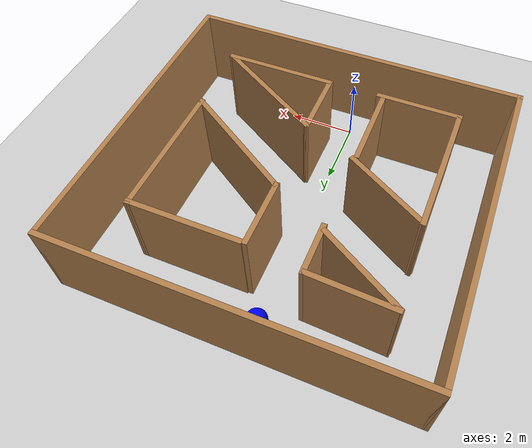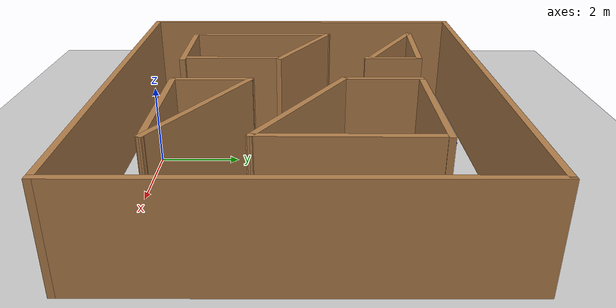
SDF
<sdf version="1.6">
 <world name="default">
  <light name="sun" type="directional">
   <pose>0 0 10 0 -0 0</pose>
   <diffuse>0.8 0.8 0.8 1</diffuse>
   <specular>0.2 0.2 0.2 1</specular>
   <attenuation>
    <range>1000</range>
    <constant>0.9</constant>
    <linear>0.01</linear>
    <quadratic>0.001</quadratic>
   </attenuation>
   <direction>-0.5 0.1 -0.9</direction>
  </light>
  <model name="ground_plane">
   <static>1</static>
   <link name="link">
    <collision name="collision">
     <geometry><plane><normal>0 0 1</normal><size>100 100</size></plane></geometry>
     <surface>
      <contact><collide_bitmask>65535</collide_bitmask></contact>
      <friction><ode><mu>100</mu><mu2>50</mu2></ode></friction>
     </surface>
    </collision>
    <visual name="visual">
     <cast_shadows>0</cast_shadows>
     <geometry><plane><normal>0 0 1</normal><size>100 100</size></plane></geometry>
     <material>
      <script><uri>file://media/materials/scripts/gazebo.material</uri><name>Gazebo/Grey</name></script>
     </material>
    </visual>
   </link>
  </model>
  <gravity>0 0 -9.8</gravity>
  <magnetic_field>6e-06 2.3e-05 -4.2e-05</magnetic_field>
  <atmosphere type="adiabatic"/>
  <physics name="default_physics" default="0" type="ode">
   <max_step_size>0.001</max_step_size>
   <real_time_factor>1</real_time_factor>
   <real_time_update_rate>1000</real_time_update_rate>
  </physics>
  <scene><ambient>0.4 0.4 0.4 1</ambient><background>0.7 0.7 0.7 1</background><shadows>1</shadows></scene>
  <audio><device>default</device></audio>
  <spherical_coordinates>
   <surface_model>EARTH_WGS84</surface_model>
   <latitude_deg>0</latitude_deg>
   <longitude_deg>0</longitude_deg>
   <elevation>0</elevation>
   <heading_deg>0</heading_deg>
  </spherical_coordinates>
  <model name="finalworld3">
   <pose>0.349156 3.66434 0 0 -0 0</pose>
   <link name="Wall_1">
    <collision name="Wall_1_Collision">
     <geometry><box><size>10.25 0.15 2.5</size></box></geometry>
     <pose>0 0 1.25 0 -0 0</pose>
    </collision>
    <visual name="Wall_1_Visual">
     <pose>0 0 1.25 0 -0 0</pose>
     <geometry><box><size>10.25 0.15 2.5</size></box></geometry>
     <material>
      <script><uri>file://media/materials/scripts/gazebo.material</uri><name>Gazebo/Wood</name></script>
      <ambient>1 1 1 1</ambient>
     </material>
     <meta><layer>0</layer></meta>
    </visual>
    <pose>0 4.55 0 0 -0 0</pose>
   </link>
   <link name="Wall_11">
    <collision name="Wall_11_Collision">
     <geometry><box><size>4.00391 0.15 2.5</size></box></geometry>
     <pose>0 0 1.25 0 -0 0</pose>
    </collision>
    <visual name="Wall_11_Visual">
     <pose>0 0 1.25 0 -0 0</pose>
     <geometry><box><size>4.00391 0.15 2.5</size></box></geometry>
     <material>
      <script><uri>file://media/materials/scripts/gazebo.material</uri><name>Gazebo/Wood</name></script>
      <ambient>1 1 1 1</ambient>
     </material>
     <meta><layer>0</layer></meta>
    </visual>
    <pose>-3.59008 -1.17618 0 0 -0 -1.57993</pose>
   </link>
   <link name="Wall_15">
    <collision name="Wall_15_Collision">
     <geometry><box><size>2.5 0.15 2.5</size></box></geometry>
     <pose>0 0 1.25 0 -0 0</pose>
    </collision>
    <visual name="Wall_15_Visual">
     <pose>0 0 1.25 0 -0 0</pose>
     <geometry><box><size>2.5 0.15 2.5</size></box></geometry>
     <material>
      <script><uri>file://media/materials/scripts/gazebo.material</uri><name>Gazebo/Wood</name></script>
      <ambient>1 1 1 1</ambient>
     </material>
     <meta><layer>0</layer></meta>
    </visual>
    <pose>-1.39208 -1.85047 0 0 -0 -1.5708</pose>
   </link>
   <link name="Wall_17">
    <collision name="Wall_17_Collision">
     <geometry><box><size>2 0.15 2.5</size></box></geometry>
     <pose>0 0 1.25 0 -0 0</pose>
    </collision>
    <visual name="Wall_17_Visual">
     <pose>0 0 1.25 0 -0 0</pose>
     <geometry><box><size>2 0.15 2.5</size></box></geometry>
     <material>
      <script><uri>file://media/materials/scripts/gazebo.material</uri><name>Gazebo/Wood</name></script>
      <ambient>1 1 1 1</ambient>
     </material>
     <meta><layer>0</layer></meta>
    </visual>
    <pose>0.255023 -2.14673 0 0 -0 -1.5708</pose>
   </link>
   <link name="Wall_19">
    <collision name="Wall_19_Collision">
     <geometry><box><size>1.5 0.15 2.5</size></box></geometry>
     <pose>0 0 1.25 0 -0 0</pose>
    </collision>
    <visual name="Wall_19_Visual">
     <pose>0 0 1.25 0 -0 0</pose>
     <geometry><box><size>1.5 0.15 2.5</size></box></geometry>
     <material>
      <script><uri>file://media/materials/scripts/gazebo.material</uri><name>Gazebo/Wood</name></script>
      <ambient>1 1 1 1</ambient>
     </material>
     <meta><layer>0</layer></meta>
    </visual>
    <pose>-1.3569 2.42381 0 0 -0 1.5708</pose>
   </link>
   <link name="Wall_2">
    <collision name="Wall_2_Collision">
     <geometry><box><size>9.25 0.15 2.5</size></box></geometry>
     <pose>0 0 1.25 0 -0 0</pose>
    </collision>
    <visual name="Wall_2_Visual">
     <pose>0 0 1.25 0 -0 0</pose>
     <geometry><box><size>9.25 0.15 2.5</size></box></geometry>
     <material>
      <script><uri>file://media/materials/scripts/gazebo.material</uri><name>Gazebo/Wood</name></script>
      <ambient>1 1 1 1</ambient>
     </material>
     <meta><layer>0</layer></meta>
    </visual>
    <pose>5.05 -0 0 0 -0 -1.5708</pose>
   </link>
   <link name="Wall_21">
    <collision name="Wall_21_Collision">
     <geometry><box><size>2 0.15 2.5</size></box></geometry>
     <pose>0 0 1.25 0 -0 0</pose>
    </collision>
    <visual name="Wall_21_Visual">
     <pose>0 0 1.25 0 -0 0</pose>
     <geometry><box><size>2 0.15 2.5</size></box></geometry>
     <material>
      <script><uri>file://media/materials/scripts/gazebo.material</uri><name>Gazebo/Wood</name></script>
      <ambient>1 1 1 1</ambient>
     </material>
     <meta><layer>0</layer></meta>
    </visual>
    <pose>0.208762 1.94153 0 0 -0 1.5708</pose>
   </link>
   <link name="Wall_23">
    <collision name="Wall_23_Collision">
     <geometry><box><size>2.5 0.15 2.5</size></box></geometry>
     <pose>0 0 1.25 0 -0 0</pose>
    </collision>
    <visual name="Wall_23_Visual">
     <pose>0 0 1.25 0 -0 0</pose>
     <geometry><box><size>2.5 0.15 2.5</size></box></geometry>
     <material>
      <script><uri>file://media/materials/scripts/gazebo.material</uri><name>Gazebo/Wood</name></script>
      <ambient>1 1 1 1</ambient>
     </material>
     <meta><layer>0</layer></meta>
    </visual>
    <pose>-2.43267 -3.10305 0 0 -0 0</pose>
   </link>
   <link name="Wall_26">
    <collision name="Wall_26_Collision">
     <geometry><box><size>3.28893 0.15 2.5</size></box></geometry>
     <pose>0 0 1.25 0 -0 0</pose>
    </collision>
    <visual name="Wall_26_Visual">
     <pose>0 0 1.25 0 -0 0</pose>
     <geometry><box><size>3.28893 0.15 2.5</size></box></geometry>
     <material>
      <script><uri>file://media/materials/scripts/gazebo.material</uri><name>Gazebo/Wood</name></script>
      <ambient>1 1 1 1</ambient>
     </material>
     <meta><layer>0</layer></meta>
    </visual>
    <pose>1.85967 -3.07173 0 0 -0 0</pose>
   </link>
   <link name="Wall_28">
    <collision name="Wall_28_Collision">
     <geometry><box><size>3.25 0.15 2.5</size></box></geometry>
     <pose>0 0 1.25 0 -0 0</pose>
    </collision>
    <visual name="Wall_28_Visual">
     <pose>0 0 1.25 0 -0 0</pose>
     <geometry><box><size>3.25 0.15 2.5</size></box></geometry>
     <material>
      <script><uri>file://media/materials/scripts/gazebo.material</uri><name>Gazebo/Wood</name></script>
      <ambient>1 1 1 1</ambient>
     </material>
     <meta><layer>0</layer></meta>
    </visual>
    <pose>1.89696 2.8966 0 0 -0 3.14159</pose>
   </link>
   <link name="Wall_3">
    <collision name="Wall_3_Collision">
     <geometry><box><size>10.25 0.15 2.5</size></box></geometry>
     <pose>0 0 1.25 0 -0 0</pose>
    </collision>
    <visual name="Wall_3_Visual">
     <pose>0 0 1.25 0 -0 0</pose>
     <geometry><box><size>10.25 0.15 2.5</size></box></geometry>
     <material>
      <script><uri>file://media/materials/scripts/gazebo.material</uri><name>Gazebo/Wood</name></script>
      <ambient>1 1 1 1</ambient>
     </material>
     <meta><layer>0</layer></meta>
    </visual>
    <pose>0 -4.55 0 0 -0 3.14159</pose>
   </link>
   <link name="Wall_30">
    <collision name="Wall_30_Collision">
     <geometry><box><size>2.44163 0.15 2.5</size></box></geometry>
     <pose>0 0 1.25 0 -0 0</pose>
    </collision>
    <visual name="Wall_30_Visual">
     <pose>0 0 1.25 0 -0 0</pose>
     <geometry><box><size>2.44163 0.15 2.5</size></box></geometry>
     <material>
      <script><uri>file://media/materials/scripts/gazebo.material</uri><name>Gazebo/Wood</name></script>
      <ambient>1 1 1 1</ambient>
     </material>
     <meta><layer>0</layer></meta>
    </visual>
    <pose>-2.53696 3.14507 0 0 -0 3.10121</pose>
   </link>
   <link name="Wall_32">
    <collision name="Wall_32_Collision">
     <geometry><box><size>3.86754 0.15 2.5</size></box></geometry>
     <pose>0 0 1.25 0 -0 0</pose>
    </collision>
    <visual name="Wall_32_Visual">
     <pose>0 0 1.25 0 -0 0</pose>
     <geometry><box><size>3.86754 0.15 2.5</size></box></geometry>
     <material>
      <script><uri>file://media/materials/scripts/gazebo.material</uri><name>Gazebo/Wood</name></script>
      <ambient>1 1 1 1</ambient>
     </material>
     <meta><layer>0</layer></meta>
    </visual>
    <pose>1.81912 0.029692 0 0 -0 2.58192</pose>
   </link>
   <link name="Wall_34">
    <collision name="Wall_34_Collision">
     <geometry><box><size>2.75 0.15 2.5</size></box></geometry>
     <pose>0 0 1.25 0 -0 0</pose>
    </collision>
    <visual name="Wall_34_Visual">
     <pose>0 0 1.25 0 -0 0</pose>
     <geometry><box><size>2.75 0.15 2.5</size></box></geometry>
     <material>
      <script><uri>file://media/materials/scripts/gazebo.material</uri><name>Gazebo/Wood</name></script>
      <ambient>1 1 1 1</ambient>
     </material>
     <meta><layer>0</layer></meta>
    </visual>
    <pose>-2.556 2.5182 0 0 -0 -0.523599</pose>
   </link>
   <link name="Wall_36">
    <collision name="Wall_36_Collision">
     <geometry><box><size>3.79354 0.15 2.5</size></box></geometry>
     <pose>0 0 1.25 0 -0 0</pose>
    </collision>
    <visual name="Wall_36_Visual">
     <pose>0 0 1.25 0 -0 0</pose>
     <geometry><box><size>3.79354 0.15 2.5</size></box></geometry>
     <material>
      <script><uri>file://media/materials/scripts/gazebo.material</uri><name>Gazebo/Wood</name></script>
      <ambient>1 1 1 1</ambient>
     </material>
     <meta><layer>0</layer></meta>
    </visual>
    <pose>1.85967 -2.14673 0 0 -0 2.60902</pose>
   </link>
   <link name="Wall_38">
    <collision name="Wall_38_Collision">
     <geometry><box><size>2.75 0.15 2.5</size></box></geometry>
     <pose>0 0 1.25 0 -0 0</pose>
    </collision>
    <visual name="Wall_38_Visual">
     <pose>0 0 1.25 0 -0 0</pose>
     <geometry><box><size>2.75 0.15 2.5</size></box></geometry>
     <material>
      <script><uri>file://media/materials/scripts/gazebo.material</uri><name>Gazebo/Wood</name></script>
      <ambient>1 1 1 1</ambient>
     </material>
     <meta><layer>0</layer></meta>
    </visual>
    <pose>-2.44666 0.100694 0 0 -0 -0.523599</pose>
   </link>
   <link name="Wall_4">
    <collision name="Wall_4_Collision">
     <geometry><box><size>9.25 0.15 2.5</size></box></geometry>
     <pose>0 0 1.25 0 -0 0</pose>
    </collision>
    <visual name="Wall_4_Visual">
     <pose>0 0 1.25 0 -0 0</pose>
     <geometry><box><size>9.25 0.15 2.5</size></box></geometry>
     <material>
      <script><uri>file://media/materials/scripts/gazebo.material</uri><name>Gazebo/Wood</name></script>
      <ambient>1 1 1 1</ambient>
     </material>
     <meta><layer>0</layer></meta>
    </visual>
    <pose>-5.05 -0 0 0 -0 1.5708</pose>
   </link>
   <link name="Wall_7">
    <collision name="Wall_7_Collision">
     <geometry><box><size>4.00411 0.15 2.5</size></box></geometry>
     <pose>0 0 1.25 0 -0 0</pose>
    </collision>
    <visual name="Wall_7_Visual">
     <pose>0 0 1.25 0 -0 0</pose>
     <geometry><box><size>4.00411 0.15 2.5</size></box></geometry>
     <material>
      <script><uri>file://media/materials/scripts/gazebo.material</uri><name>Gazebo/Wood</name></script>
      <ambient>1 1 1 1</ambient>
     </material>
     <meta><layer>0</layer></meta>
    </visual>
    <pose>3.41188 0.969724 0 0 -0 -1.57993</pose>
   </link>
   <static>1</static>
  </model>
  <model name="mundo4">
   <link name="link">
    <inertial>
     <mass>1</mass>
     <inertia><ixx>0.1</ixx><ixy>0</ixy><ixz>0</ixz><iyy>0.1</iyy><iyz>0</iyz><izz>0.1</izz></inertia>
    </inertial>
    <visual name="visual">
     <geometry><sphere><radius>0.3</radius></sphere></geometry>
     <material>
      <script><name>Gazebo/Grey</name><uri>file://media/materials/scripts/gazebo.material</uri></script>
      <shader type="vertex"><normal_map>__default__</normal_map></shader>
      <ambient>0 0 1 1</ambient>
      <diffuse>0 0 1 1</diffuse>
      <specular>0 0 1 1</specular>
      <emissive>0 0 1 1</emissive>
     </material>
    </visual>
    <collision name="collision">
     <geometry><sphere><radius>0.5</radius></sphere></geometry>
     <surface>
      <friction>
       <ode><mu>1</mu><mu2>1</mu2><fdir1>0 0 0</fdir1><slip1>0</slip1><slip2>0</slip2></ode>
       <torsional>
        <coefficient>1</coefficient>
        <patch_radius>0</patch_radius>
        <surface_radius>0</surface_radius>
        <use_patch_radius>1</use_patch_radius>
        <ode><slip>0</slip></ode>
       </torsional>
      </friction>
      <bounce><restitution_coefficient>0</restitution_coefficient><threshold>1e+06</threshold></bounce>
      <contact>
       <collide_without_contact>0</collide_without_contact>
       <collide_without_contact_bitmask>1</collide_without_contact_bitmask>
       <collide_bitmask>1</collide_bitmask>
       <ode>
        <soft_cfm>0</soft_cfm>
        <soft_erp>0.2</soft_erp>
        <kp>1e+13</kp>
        <kd>1</kd>
        <max_vel>0.01</max_vel>
        <min_depth>0</min_depth>
       </ode>
       <bullet>
        <split_impulse>1</split_impulse>
        <split_impulse_penetration_threshold>-0.01</split_impulse_penetration_threshold>
        <soft_cfm>0</soft_cfm>
        <soft_erp>0.2</soft_erp>
        <kp>1e+13</kp>
        <kd>1</kd>
       </bullet>
      </contact>
     </surface>
    </collision>
   </link>
   <static>0</static>
   <pose>-0.036181 7.44082 0.5 -0.012322 -0.05063 0.000624</pose>
  </model>
 </world>
</sdf>
